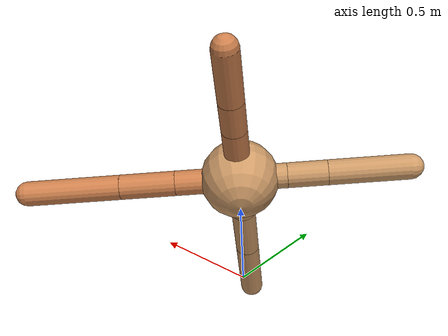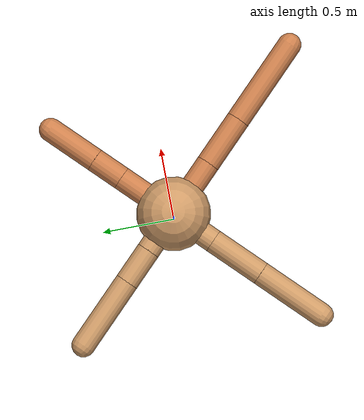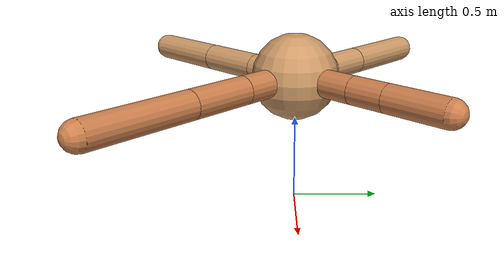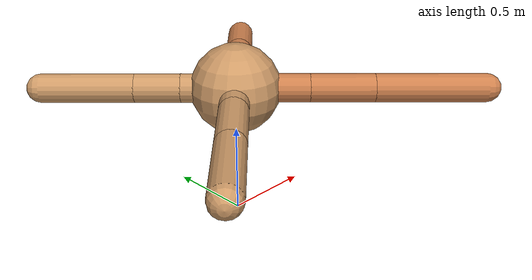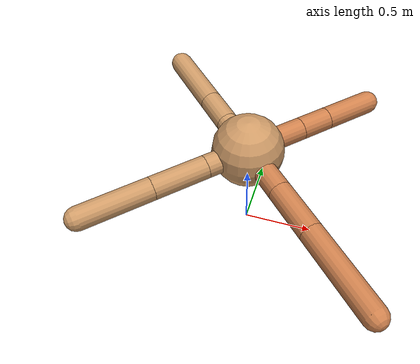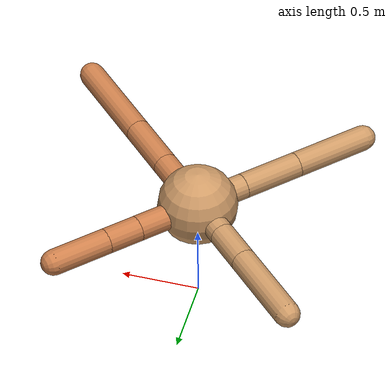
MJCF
<mujoco model="ant">
  <compiler angle="degree" coordinate="local" inertiafromgeom="true" />
  <option integrator="RK4" timestep="0.01" />
  <custom>
    <numeric data="0.0 0.0 0.55 1.0 0.0 0.0 0.0 0.0 1.0 0.0 -1.0 0.0 -1.0 0.0 1.0" name="init_qpos" />
  </custom>
  <default>
    <joint armature="1" damping="1" limited="true" />
    <geom conaffinity="0" condim="3" density="5.0" friction="1.5 0.1 0.1" margin="0.01" rgba="0.8 0.6 0.4 1" />
  </default>
  <worldbody>
    <body name="torso" pos="0 0 0.75">
      <geom name="torso_geom" pos="0 0 0" size="0.25" type="sphere" />

      <body name="front_left_leg" pos="0 0 0">
        <geom fromto="0.0 0.0 0.0 0.29773361437383383 0.29773361437383383 0.0" name="aux_1_geom" size="0.08" type="capsule" rgba=".8 .5 .3 1" />
        <body name="aux_1" pos="0.29773361437383383 0.29773361437383383 0.0">
          <joint axis="0 0 1" name="hip_1" pos="0.0 0.0 0.0" range="-40 40" type="hinge" />
          <geom fromto="0.0 0.0 0.0 0.15357182287125284 0.15357182287125284 0.0" name="left_leg_geom" size="0.08" type="capsule" rgba=".8 .5 .3 1" />
          <body pos="0.15357182287125284 0.15357182287125284 0.0" name="front_left_foot">
            <joint axis="-1 1 0" name="ankle_1" pos="0.0 0.0 0.0" range="30 100" type="hinge" />
            <geom fromto="0.0 0.0 0.0 0.2544016438927488 0.2544016438927488 0.0" name="left_ankle_geom" size="0.08" type="capsule" rgba=".8 .5 .3 1" />
          </body>
        </body>
      </body>
      <body name="front_right_leg" pos="0 0 0">
        <geom fromto="0.0 0.0 0.0 -0.21225043472898497 0.21225043472898497 0.0" name="aux_2_geom" size="0.08" type="capsule" />
        <body name="aux_2" pos="-0.21225043472898497 0.21225043472898497 0.0">
          <joint axis="0 0 1" name="hip_2" pos="0.0 0.0 0.0" range="-40 40" type="hinge" />
          <geom fromto="0.0 0.0 0.0 -0.17869456065045508 0.17869456065045508 0.0" name="right_leg_geom" size="0.08" type="capsule" />
          <body pos="-0.17869456065045508 0.17869456065045508 0.0" name="front_right_foot">
            <joint axis="1 1 0" name="ankle_2" pos="0.0 0.0 0.0" range="-100 -30" type="hinge" />
            <geom fromto="0.0 0.0 0.0 -0.36175751670559253 0.36175751670559253 0.0" name="right_ankle_geom" size="0.08" type="capsule" />
          </body>
        </body>
      </body>
      <body name="left_back_leg" pos="0 0 0">
        <geom fromto="0.0 0.0 0.0 -0.22786699070716715 -0.22786699070716715 0.0" name="aux_3_geom" size="0.08" type="capsule" />
        <body name="aux_3" pos="-0.22786699070716715 -0.22786699070716715 0.0">
          <joint axis="0 0 1" name="hip_3" pos="0.0 0.0 0.0" range="-40 40" type="hinge" />
          <geom fromto="0.0 0.0 0.0 -0.27109545389993395 -0.27109545389993395 0.0" name="back_leg_geom" size="0.08" type="capsule" />
          <body pos="-0.27109545389993395 -0.27109545389993395 0.0" name="left_back_foot">
            <joint axis="-1 1 0" name="ankle_3" pos="0.0 0.0 0.0" range="-100 -30" type="hinge" />
            <geom fromto="0.0 0.0 0.0 -0.3482358454705523 -0.3482358454705523 0.0" name="third_ankle_geom" size="0.08" type="capsule" />
          </body>
        </body>
      </body>
      <body name="right_back_leg" pos="0 0 0">
        <geom fromto="0.0 0.0 0.0 0.2885583649857266 -0.2885583649857266 0.0" name="aux_4_geom" size="0.08" type="capsule" rgba=".8 .5 .3 1" />
        <body name="aux_4" pos="0.2885583649857266 -0.2885583649857266 0.0">
          <joint axis="0 0 1" name="hip_4" pos="0.0 0.0 0.0" range="-40 40" type="hinge" />
          <geom fromto="0.0 0.0 0.0 0.2519625396691362 -0.2519625396691362 0.0" name="rightback_leg_geom" size="0.08" type="capsule" rgba=".8 .5 .3 1" />
          <body pos="0.2519625396691362 -0.2519625396691362 0.0" name="right_back_foot">
            <joint axis="1 1 0" name="ankle_4" pos="0.0 0.0 0.0" range="30 100" type="hinge" />
            <geom fromto="0.0 0.0 0.0 0.4330953787570061 -0.4330953787570061 0.0" name="fourth_ankle_geom" size="0.08" type="capsule" rgba=".8 .5 .3 1" />
          </body>
        </body>
      </body>
    </body>
  </worldbody>
  <actuator>
    <motor ctrllimited="true" ctrlrange="-1.0 1.0" joint="hip_4" gear="150" />
    <motor ctrllimited="true" ctrlrange="-1.0 1.0" joint="ankle_4" gear="150" />
    <motor ctrllimited="true" ctrlrange="-1.0 1.0" joint="hip_1" gear="150" />
    <motor ctrllimited="true" ctrlrange="-1.0 1.0" joint="ankle_1" gear="150" />
    <motor ctrllimited="true" ctrlrange="-1.0 1.0" joint="hip_2" gear="150" />
    <motor ctrllimited="true" ctrlrange="-1.0 1.0" joint="ankle_2" gear="150" />
    <motor ctrllimited="true" ctrlrange="-1.0 1.0" joint="hip_3" gear="150" />
    <motor ctrllimited="true" ctrlrange="-1.0 1.0" joint="ankle_3" gear="150" />
  </actuator>
</mujoco>
